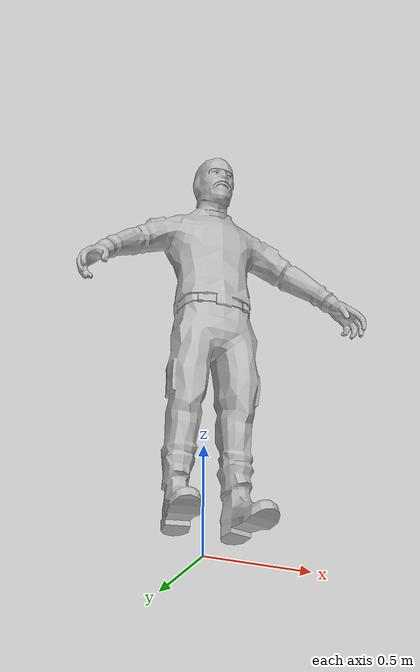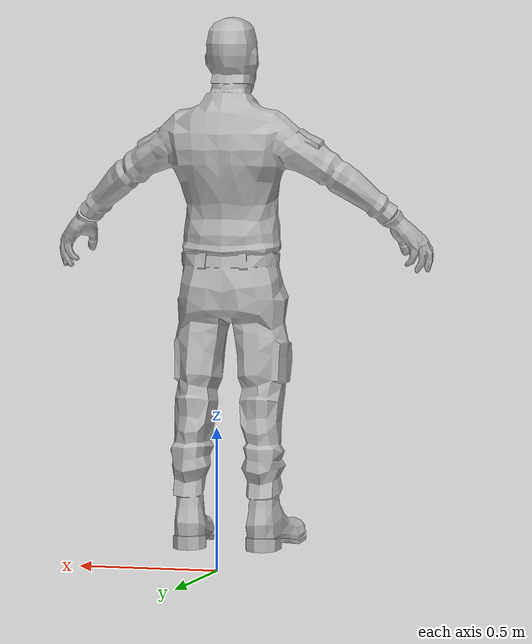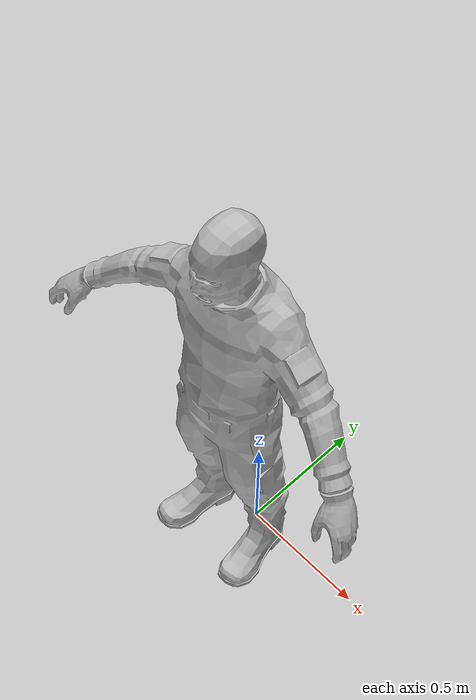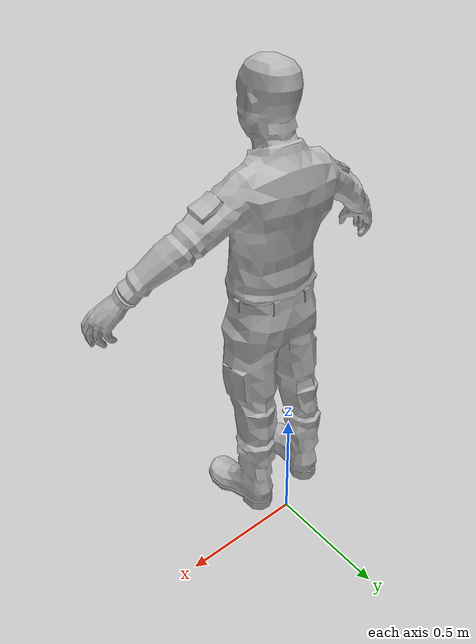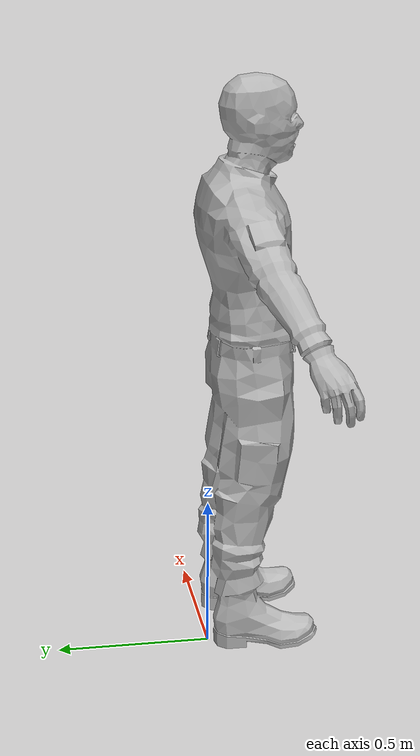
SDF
<?xml version='1.0'?>
<sdf version='1.6'>
  <model name='robber'>
    <link name='link_1'>
         <visual name='visual'>
        <pose frame=''>0 0 0 0 -0 0</pose>
        <geometry>
          <mesh>
            <uri>model://robber/meshes/robber.dae</uri>
            <scale>1.0 1.0 1.0</scale>
          </mesh>
        </geometry>
        <cast_shadows>1</cast_shadows>
        <transparency>0</transparency>
      </visual>

    </link>

    <static>1</static>
    <allow_auto_disable>1</allow_auto_disable>
  </model>
</sdf>
